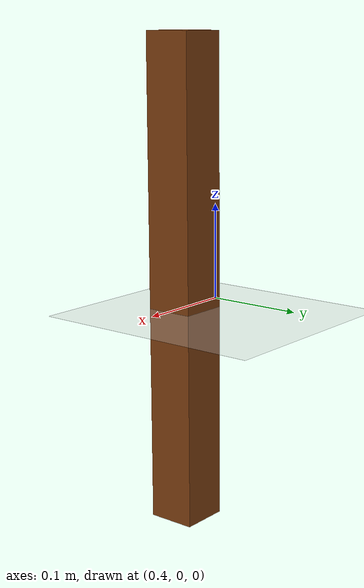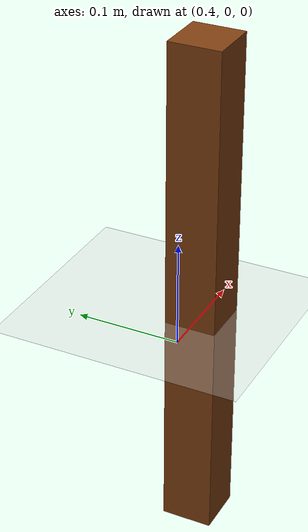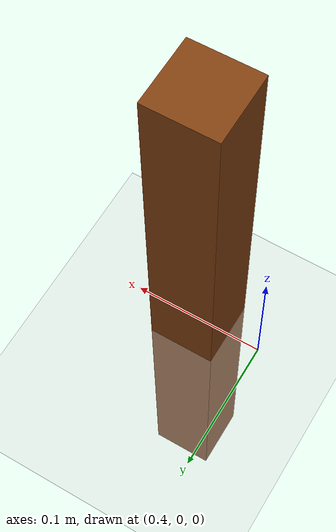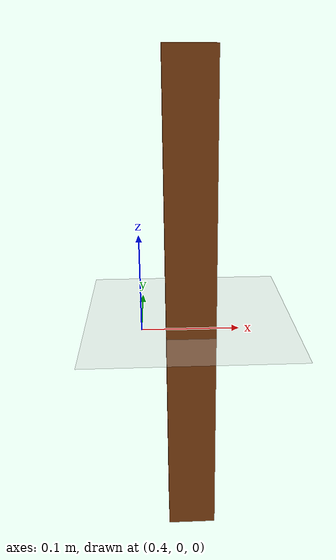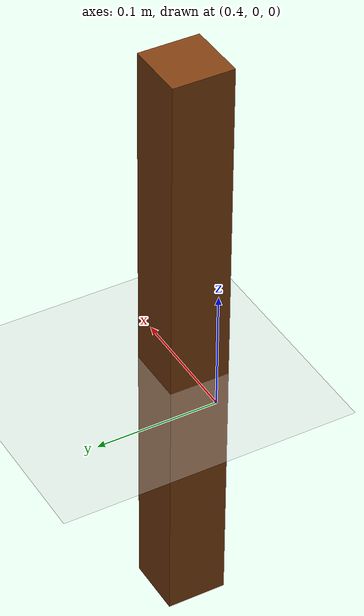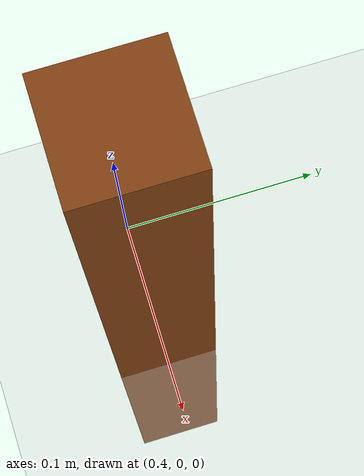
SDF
<?xml version="1.0"?>
<sdf version="1.9">
  <world name="panda_world">

    <physics name="1ms" type="ignored">
      <max_step_size>0.001</max_step_size>
      <real_time_factor>1.0</real_time_factor>
    </physics>

    <!-- Required plugins -->
    <plugin filename="gz-sim-physics-system"
            name="gz::sim::systems::Physics"/>
    <plugin filename="gz-sim-user-commands-system"
            name="gz::sim::systems::UserCommands"/>
    <plugin filename="gz-sim-scene-broadcaster-system"
            name="gz::sim::systems::SceneBroadcaster"/>
    <plugin filename="gz-sim-sensors-system"
            name="gz::sim::systems::Sensors">
      <render_engine>ogre2</render_engine>
    </plugin>
    <plugin filename="gz-sim-contact-system"
            name="gz::sim::systems::Contact"/>

    <!-- Lighting -->
    <light type="directional" name="sun">
      <cast_shadows>true</cast_shadows>
      <pose>0 0 10 0 0 0</pose>
      <diffuse>0.8 0.8 0.8 1</diffuse>
      <specular>0.2 0.2 0.2 1</specular>
      <direction>-0.5 0.1 -0.9</direction>
    </light>

    <!-- I can confirm this does nothing. Its in the launch file now. -->
    <gui fullscreen="0">
      <camera name="user_camera">
        <!-- 1.5 m back, 0.8 m to the side, 1.2 m up, looking slightly down -->
        <pose>1.5 -1.0 1.2 0 0.4 2.4</pose>
        <view_controller>orbit</view_controller>
      </camera>
    </gui>

    <!-- Ground plane -->
    <model name="ground_plane">
      <static>true</static>
      <link name="link">
        <collision name="collision">
          <geometry>
            <plane>
              <normal>0 0 1</normal>
              <size>5 5</size>
            </plane>
          </geometry>
        </collision>
        <visual name="visual">
          <geometry>
            <plane>
              <normal>0 0 1</normal>
              <size>5 5</size>
            </plane>
          </geometry>
          <material>
            <ambient>0.8 0.8 0.8 1</ambient>
            <diffuse>0.8 0.8 0.8 1</diffuse>
          </material>
        </visual>
      </link>
    </model>

    <!-- Small brown box on the ground below the gripper workspace -->
    <model name="brown_box">
      <static>true</static>
      <pose>0.45 0 0.025 0 0 0</pose>
      <link name="link">
        <collision name="collision">
          <geometry>
            <box>
              <size>0.05 0.05 0.5</size>
            </box>
          </geometry>
        </collision>
        <visual name="visual">
          <geometry>
            <box>
              <size>0.05 0.05 0.5</size>
            </box>
          </geometry>
          <material>
            <ambient>0.4 0.2 0.05 1</ambient>
            <diffuse>0.5 0.25 0.07 1</diffuse>
            <specular>0.1 0.05 0.01 1</specular>
          </material>
        </visual>
      </link>
    </model>

  </world>
</sdf>
